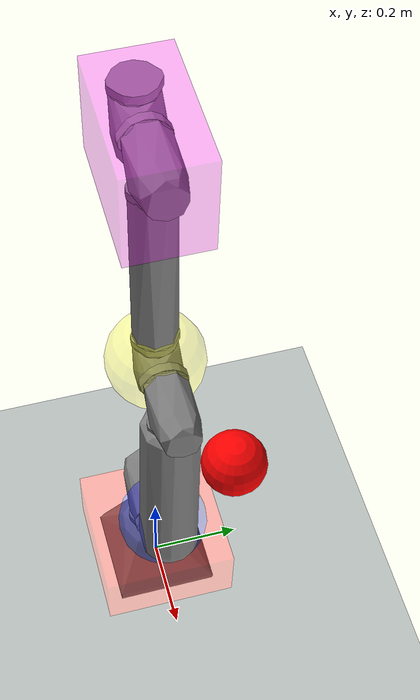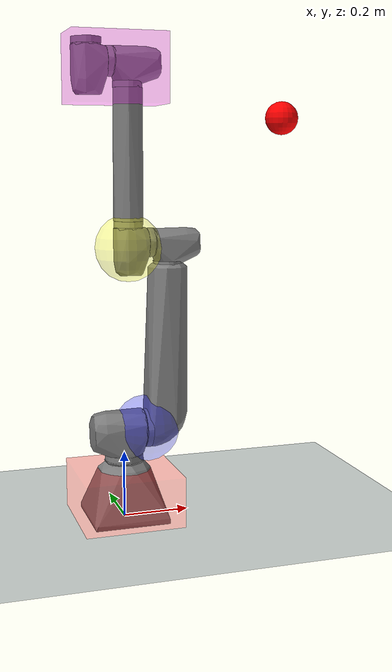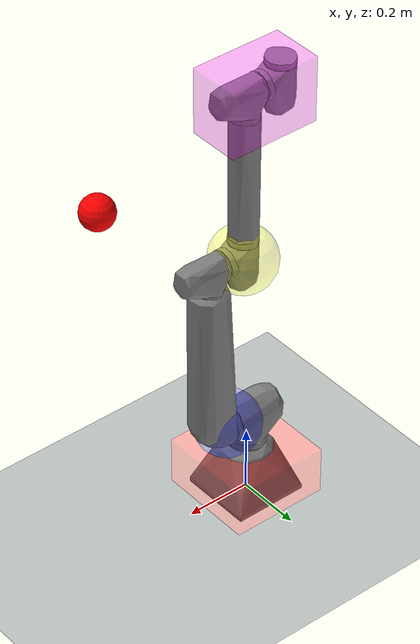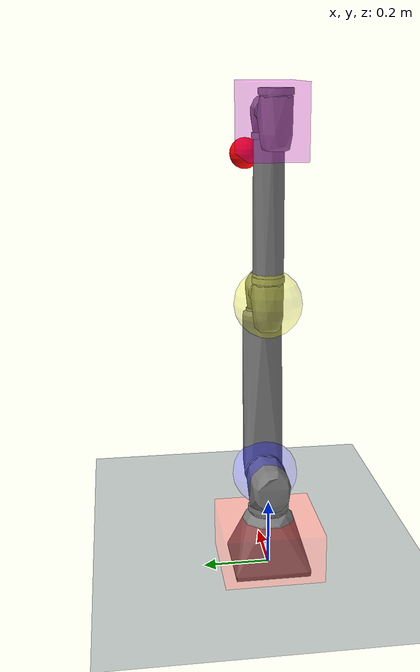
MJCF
<mujoco model="robco">
  <compiler angle="radian"/>

  <option timestep="0.002" integrator="implicitfast"/>

  <asset>
    <!-- Textures and materials for the ground plane -->
    <texture name="texplane" type="2d" builtin="checker" rgb1=".2 .3 .4" rgb2=".1 .15 .2" width="512" height="512" mark="cross" markrgb=".8 .8 .8"/>
    <material name="matplane" reflectance="0.3" texture="texplane" texrepeat="1 1" texuniform="true"/>

    <!-- Robot mesh assets -->
    <mesh name="BD116_proximal_part_convdec" content_type="model/stl" file="assets/BD116_proximal_part_convdec.stl"/>
    <mesh name="BD116_distal_part_convdec" content_type="model/stl" file="assets/BD116_distal_part_convdec.stl"/>
    <mesh name="C116_convdec" content_type="model/stl" file="assets/C116_convdec.stl"/>
    <mesh name="D116-876.0002-G-proximal_convdec" content_type="model/stl" file="assets/D116-876.0002-G-proximal_convdec.stl"/>
    <mesh name="D116-876.0002-G-distal_convdec" content_type="model/stl" file="assets/D116-876.0002-G-distal_convdec.stl"/>
    <mesh name="L116-500_convdec" content_type="model/stl" file="assets/L116-500_convdec.stl"/>
    <mesh name="C86_convdec" content_type="model/stl" file="assets/C86_convdec.stl"/>
    <mesh name="D86-876.0001-H-proximal_convdec" content_type="model/stl" file="assets/D86-876.0001-H-proximal_convdec.stl"/>
    <mesh name="D86-876.0001-H-distal_convdec" content_type="model/stl" file="assets/D86-876.0001-H-distal_convdec.stl"/>
    <mesh name="I86-400_convdec" content_type="model/stl" file="assets/I86-400_convdec.stl"/>
  </asset>

  <worldbody>
    <!-- Lighting -->
    <light directional="true" ambient="0.2 0.2 0.2" diffuse="0.8 0.8 0.8" specular="0.3 0.3 0.3" pos="0 0 4" dir="0 0 -1"/>
    <light directional="true" ambient="0.1 0.1 0.1" diffuse="0.4 0.4 0.4" specular="0.1 0.1 0.1" pos="2 2 3" dir="-1 -1 -1"/>

    <!-- Ground plane -->
    <geom name="floor" pos="0 0 0" size="0 0 0.05" type="plane" material="matplane"/>
    <geom type="mesh" mesh="BD116_proximal_part_convdec" contype="0" conaffinity="0"/>
    <geom name="joint0_collision" type="box" size="0.15 0.15 0.15" pos="0 0 0" rgba="1 0 0 0.3" contype="1" conaffinity="1"/> <!-- red -->
    <!-- Target object for reaching task -->
    <body name="target" pos="0.5 0 1.2" mocap="true">
      <geom type="sphere" size="0.05" rgba="1 0 0 1" contype="0" conaffinity="0"/>
    </body>
    <body name="joint0_distal" pos="0 0 0.1887">
      <inertial pos="0.00621845 0.000265818 0.0535059" quat="0.73903 0.0245332 0.0293139 0.672587" mass="4.1622" diaginertia="0.0429894 0.042189 0.00873913"/>
      <joint name="joint0_joint" pos="0 0 0" axis="0 0 1" range="-4.7124 4.7124"/>
      <geom type="mesh" mesh="BD116_distal_part_convdec" contype="0" conaffinity="0"/>
      <geom type="mesh" mesh="C116_convdec" contype="0" conaffinity="0"/>
      <geom type="mesh" mesh="D116-876.0002-G-proximal_convdec" contype="0" conaffinity="0"/>
      <body name="joint1_distal" pos="0.0702 0 0.082" quat="0 0.707107 0 0.707107">
        <inertial pos="0.106613 0.185781 0.0844217" quat="0.230033 0.593444 -0.414361 0.650549" mass="4.74208" diaginertia="0.528787 0.386972 0.222957"/>
        <joint name="joint1_joint" damping="2.0" pos="0 0 0" axis="0 0 1" range="-4.7124 4.7124"/>
        <geom type="mesh" mesh="D116-876.0002-G-distal_convdec" contype="0" conaffinity="0"/>
        <geom type="mesh" mesh="C116_convdec" contype="0" conaffinity="0"/>
        <geom type="mesh" mesh="L116-500_convdec" contype="0" conaffinity="0"/>
        <geom name="joint1_collision" type="sphere" size="0.1 0.1" pos="0.0 0 0.0" rgba="0 0 1 0.3" contype="1" conaffinity="1"/> <!-- blue -->
        <geom pos="0.5 0 0.068" quat="0.707107 0 0.707107 0" type="mesh" mesh="C86_convdec" contype="0" conaffinity="0"/>
        <geom pos="0.5 0 0.068" quat="0.707107 0 0.707107 0" type="mesh" mesh="D86-876.0001-H-proximal_convdec" contype="0" conaffinity="0"/>
        <body name="joint2_distal" pos="0.564 0 0.0128" quat="0 1 0 0">
          <inertial pos="-0.0016138 0.00021641 0.047885" quat="0.719232 -0.0147998 -0.0123681 0.694502" mass="2.0708" diaginertia="0.0112523 0.0104514 0.00301799"/>
          <joint name="joint2_joint" damping="2.0" pos="0 0 0" axis="0 0 1" range="-4.7124 4.7124"/>
          <geom type="mesh" mesh="D86-876.0001-H-distal_convdec" contype="0" conaffinity="0"/>
          <geom type="mesh" mesh="C86_convdec" contype="0" conaffinity="0"/>
          <geom type="mesh" mesh="D86-876.0001-H-proximal_convdec" contype="0" conaffinity="0"/>
          <body name="joint3_distal" pos="0.0552 0 0.064" quat="0 0.707107 0 0.707107">
            <inertial pos="-0.00990896 -0.0127434 0.310235" quat="0.998596 -0.0505537 -0.0158118 0.00064432" mass="3.3876" diaginertia="0.186582 0.170909 0.020963"/>
            <joint name="joint3_joint" damping="2.0" pos="0 0 0" axis="0 0 1" range="-4.7124 4.7124"/>
            <geom type="mesh" mesh="D86-876.0001-H-distal_convdec" contype="0" conaffinity="0"/>
            <geom type="mesh" mesh="C86_convdec" contype="0" conaffinity="0"/>
            <geom type="mesh" mesh="I86-400_convdec" contype="0" conaffinity="0"/>
            <geom name="joint3_collision" type="sphere" size="0.1 0.1" pos="0 0 -0.07" rgba="1 1 0 0.3" contype="1" conaffinity="1"/> <!-- yellow -->
            <geom pos="0 0 0.4" quat="1 0 0 0" type="mesh" mesh="C86_convdec" contype="0" conaffinity="0"/>
            <geom pos="0 0 0.4" quat="1 0 0 0" type="mesh" mesh="D86-876.0001-H-proximal_convdec" contype="0" conaffinity="0"/>
            <body name="joint4_distal" pos="0.0552 0 0.464" quat="0 0.707107 0 0.707107">
              <inertial pos="-0.0016138 0.00021641 0.047885" quat="0.719232 -0.0147998 -0.0123681 0.694502" mass="2.0708" diaginertia="0.0112523 0.0104514 0.00301799"/>
              <joint name="joint4_joint" damping="2.0" pos="0 0 0" axis="0 0 1" range="-4.7124 4.7124"/>
              <geom type="mesh" mesh="D86-876.0001-H-distal_convdec" contype="0" conaffinity="0"/>
              <geom type="mesh" mesh="C86_convdec" contype="0" conaffinity="0"/>
              <geom type="mesh" mesh="D86-876.0001-H-proximal_convdec" contype="0" conaffinity="0"/>
              <geom name="joint4_collision" type="box" size="0.1 0.08 0.14" pos="-0.02 0 -0.02" rgba="1 0 1 0.3" contype="1" conaffinity="1"/> <!-- magenta -->
              <body name="joint5_distal" pos="0.0552 0 0.064" quat="0 0.707107 0 0.707107">
                <inertial pos="8.1887e-05 0.00021863 0.0169912" quat="0.996955 -0.00209442 0.00119539 -0.077939" mass="0.772831" diaginertia="0.00217087 0.00212511 0.000873867"/>
                <joint name="joint5_joint" damping="2.0" pos="0 0 0" axis="0 0 1" range="-4.7124 4.7124"/>
                <geom type="mesh" mesh="D86-876.0001-H-distal_convdec" contype="0" conaffinity="0"/>
                <geom type="mesh" mesh="C86_convdec" contype="0" conaffinity="0"/>
              </body>
            </body>
          </body>
        </body>
      </body>
    </body>
  </worldbody>

  <sensor>
    <!-- Self-collision sensors between non-adjacent robot parts -->
    <contact name="joint0_joint4_found" geom1="joint0_collision" geom2="joint4_collision" reduce="mindist" num="1" data="found"/>
    <contact name="joint1_joint4_found" geom1="joint1_collision" geom2="joint4_collision" reduce="mindist" num="1" data="found"/>
    <!-- Ground collision sensors -->
    <contact name="joint3_floor_found" geom1="joint3_collision" geom2="floor" reduce="mindist" num="1" data="found"/>
    <contact name="joint4_floor_found" geom1="joint4_collision" geom2="floor" reduce="mindist" num="1" data="found"/>
  </sensor>

  <actuator>
    <position name="joint0_joint_ctrl" joint="joint0_joint" kp="40" dampratio="1" ctrllimited="true" ctrlrange="-4.7124 4.7124"/>
    <position name="joint1_joint_ctrl" joint="joint1_joint" kp="100" dampratio="1" ctrllimited="true" ctrlrange="-4.7124 4.7124"/>
    <position name="joint2_joint_ctrl" joint="joint2_joint" kp="40" dampratio="1" ctrllimited="true" ctrlrange="-4.7124 4.7124"/>
    <position name="joint3_joint_ctrl" joint="joint3_joint" kp="40" dampratio="1" ctrllimited="true" ctrlrange="-4.7124 4.7124"/>
    <position name="joint4_joint_ctrl" joint="joint4_joint" kp="20" dampratio="1" ctrllimited="true" ctrlrange="-4.7124 4.7124"/>
    <position name="joint5_joint_ctrl" joint="joint5_joint" kp="20" dampratio="1" ctrllimited="true" ctrlrange="-4.7124 4.7124"/>
  </actuator>
</mujoco>
